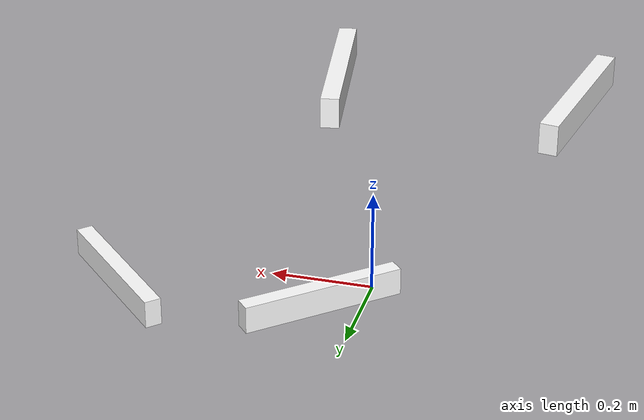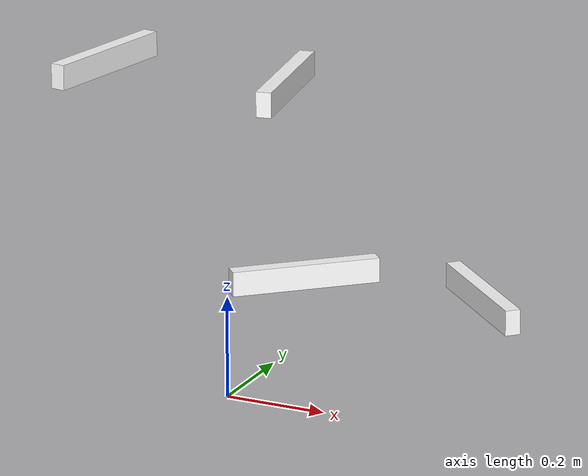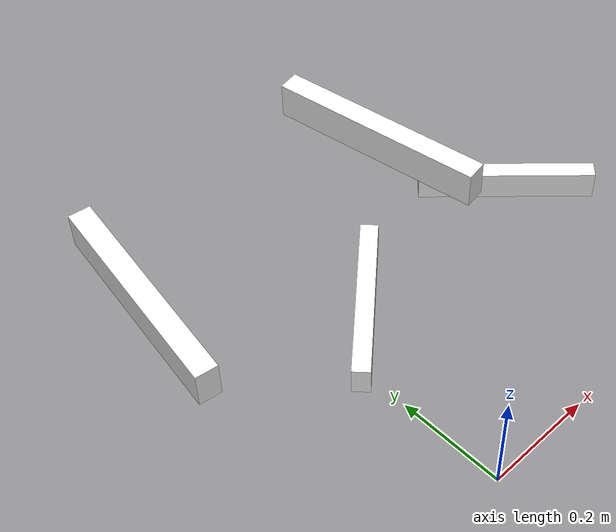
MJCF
<mujoco>
  <compiler angle="radian" />

  <visual>
    <headlight ambient="0.1 0.1 0.1"/>
  </visual>

  <asset>
    <material name="white" rgba="1 1 1 1"/>
    <material name="goal" rgba="0 0 0 0.3"/>
  </asset>

  <option gravity="0 0 -9.8" />
  <worldbody>
    <body name="obj1" pos="0.38404472 0.33081022 0.151" quat="0.38408228 0 0 -0.92329887">
      <joint type="free" />
      <inertial pos="0 0 0" mass="1" diaginertia="0.01 0.01 0.01"/>
      <geom type="box" size="0.015 0.15 0.025" material="white"/>
      <!--geom type="box" size="0.1 0.2 0.3" rgba="0.9 0 0 1"/-->
    </body>

    <body name="obj2" pos="-0.39622688 0.26382826 0.551" quat="0.99665138 0 0 -0.08176817">
      <joint type="free" />
      <inertial pos="0 0 0" mass="1" diaginertia="0.01 0.01 0.01"/>
      <geom type="box" size="0.015 0.15 0.025" material="white"/>
      <!--geom type="box" size="0.1 0.2 0.3" rgba="0.9 0 0 1"/-->
    </body>

    <body name="obj3" pos="0.0167442 0.30602252 0.151" quat="0.40447506 0 0 0.91454903">
      <joint type="free" />
      <inertial pos="0 0 0" mass="1" diaginertia="0.01 0.01 0.01"/>
      <geom type="box" size="0.015 0.15 0.025" material="white"/>
      <!--geom type="box" size="0.1 0.2 0.3" rgba="0.9 0 0 1"/-->
    </body>

    <body name="obj4" pos="-0.00161777 0.26079017 0.551" quat="0.08132772 0 0 -0.99668741">
      <joint type="free" />
      <inertial pos="0 0 0" mass="1" diaginertia="0.01 0.01 0.01"/>
      <geom type="box" size="0.015 0.15 0.025" material="white"/>
      <!--geom type="box" size="0.1 0.2 0.3" rgba="0.9 0 0 1"/-->
    </body>

  </worldbody>
</mujoco>
